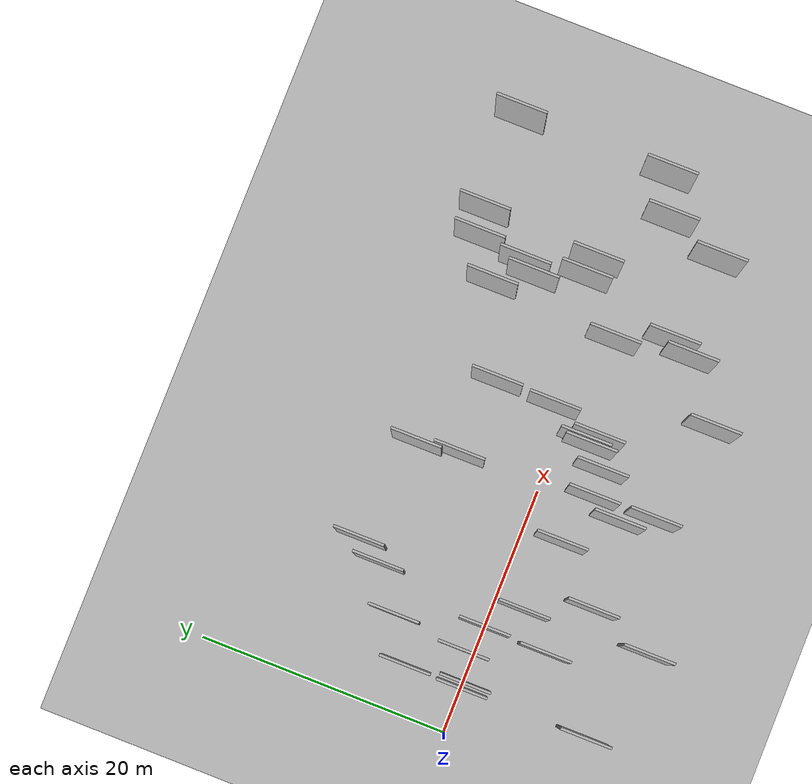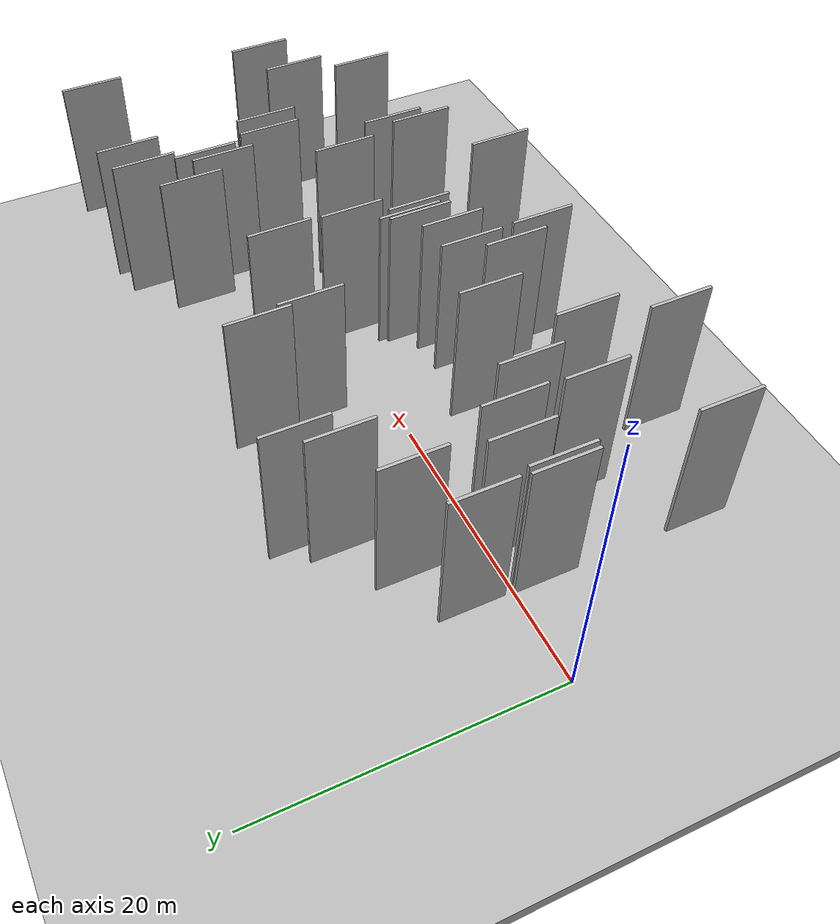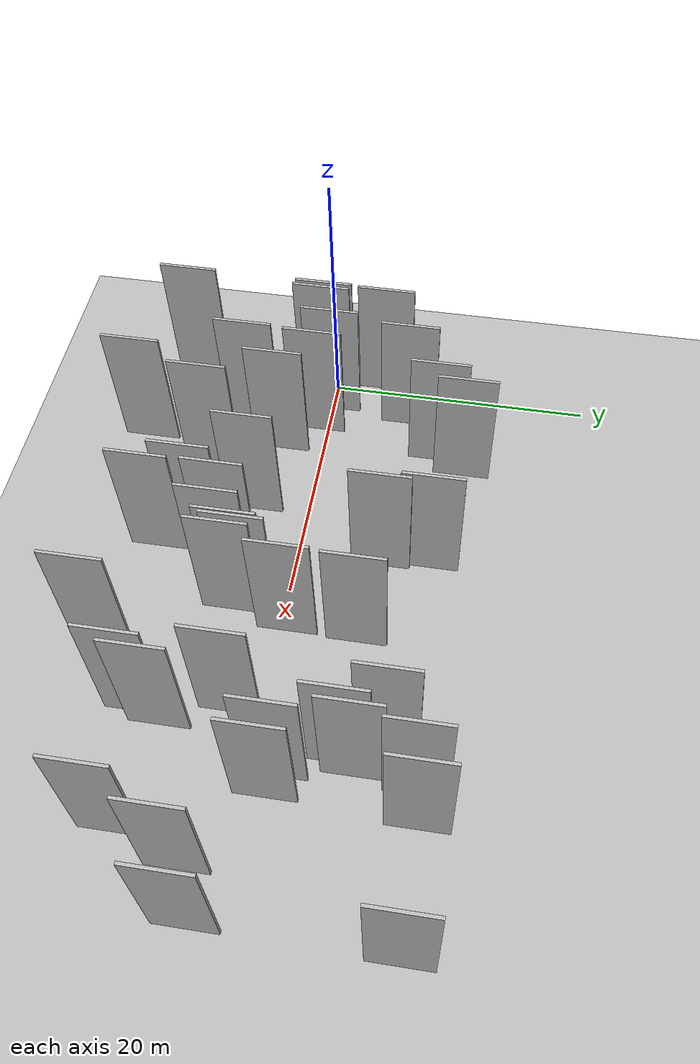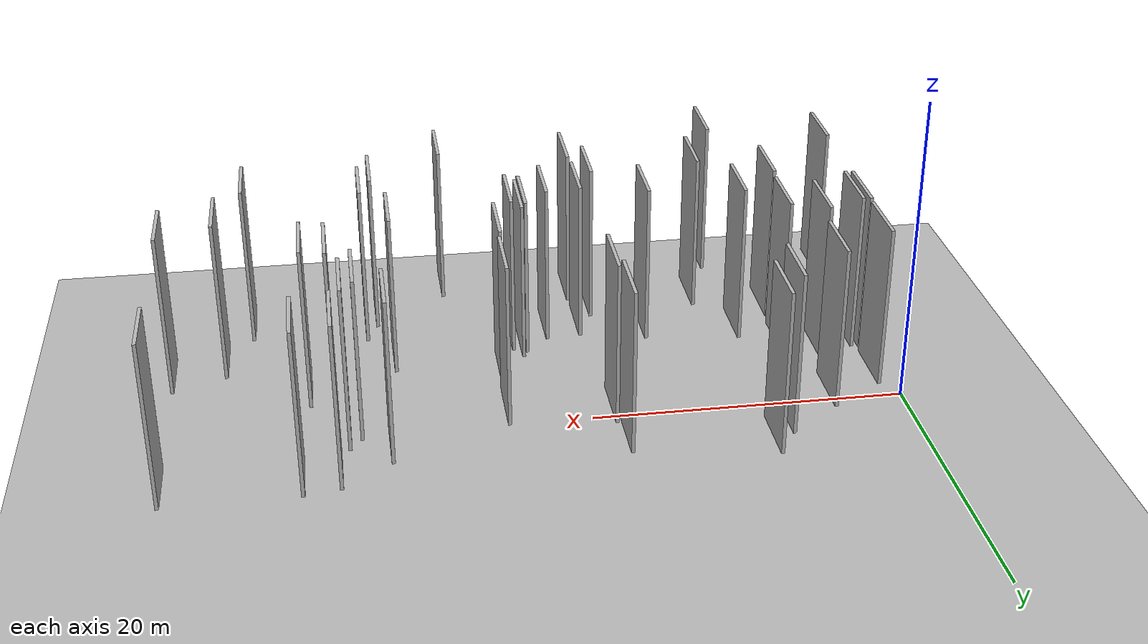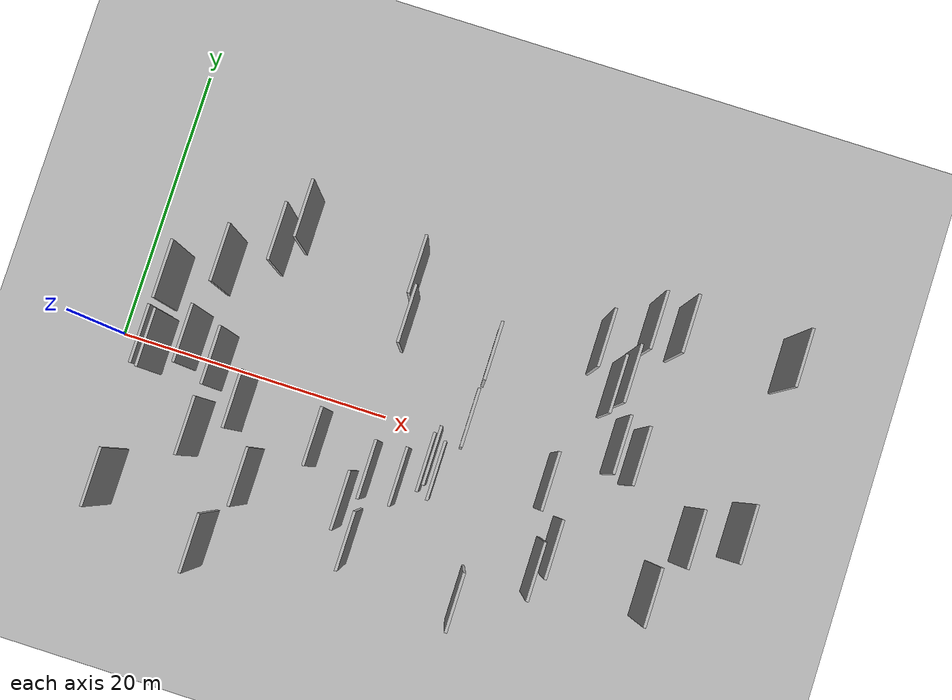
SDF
<?xml version="1.0" encoding="utf-8"?>

<sdf version="1.6">

   <world name="default">

      <gui fullscreen="0">

         <camera name="user_camera">

            <pose>-15 0 4.57585 0 0 0</pose>

            <view_controller>orbit</view_controller>

         </camera>

      </gui>

      <scene>

         <sky>

           <clouds>

             <speed>12</speed>

           </clouds>

         </sky>

         <ambient>0.4 0.4 0.4 1</ambient>

         <background>0.7 0.7 0.7 1</background>

         <shadows>1</shadows>

      </scene>

      <gravity>0 0 -9.8066</gravity>

      <magnetic_field>6e-06 2.3e-05 -4.2e-05</magnetic_field>

      <physics default="0" name="default_physics" type="ode">

         <ode>

            <solver>

               <type>quick</type>

               <iters>10</iters>

               <sor>1.0</sor>

               <use_dynamic_moi_rescaling>0</use_dynamic_moi_rescaling>

            </solver>

            <constraints>

               <cfm>0</cfm>

               <erp>0.2</erp>

               <contact_max_correcting_vel>100</contact_max_correcting_vel>

               <contact_surface_layer>0.001</contact_surface_layer>

            </constraints>

         </ode>

         <max_step_size>0.004</max_step_size>

         <real_time_factor>1</real_time_factor>

         <real_time_update_rate>250</real_time_update_rate>

      </physics>

      <light name="sun" type="directional">

         <cast_shadows>1</cast_shadows>

         <pose>0 0 10 0 0 0</pose>

         <diffuse>0.8 0.8 0.8 1</diffuse>

         <specular>0.2 0.2 0.2 1</specular>

         <attenuation>

            <range>1000</range>

            <constant>0.9</constant>

            <linear>0.01</linear>

            <quadratic>0.001</quadratic>

         </attenuation>

         <direction>-0.5 0.1 -0.9</direction>

      </light>

      <include>

         <name>ground_plane_1</name>

         <uri>model://HANNAS_ground_plane</uri>

         <pose>0 0 0  0 0 0</pose>

      </include>

      <include>

         <name>ground_plane_2</name>

         <uri>model://HANNAS_ground_plane</uri>

         <pose>100 0 0  0 0 0</pose>

      </include>

      <model name="HANNAS_wall_1">

         <static>1</static>

         <pose frame="">32.0899 -0.9507 5.0 0.000000 0.000000 1.570796</pose>

         <link name="link">

            <pose frame="">0 0 5.00 0 0 0</pose>

            <collision name="collision">

               <geometry>

                  <box>

                     <size>4.00 0.2 10.00</size>

                  </box>

               </geometry>

               <max_contacts>10</max_contacts>

               <surface>

                  <contact>

                     <ode/>

                  </contact>

                  <bounce/>

                  <friction>

                     <torsional>

                        <ode/>

                     </torsional>

                     <ode/>

                  </friction>

               </surface>

            </collision>

            <visual name="visual">

               <cast_shadows>0</cast_shadows>

               <geometry>

                  <box>

                     <size>4.00 0.2 10.00</size>

                  </box>

               </geometry>

               <material>

                  <script>

                     <uri>model://HANNAS_wall/materials/scripts</uri>

                     <uri>model://HANNAS_wall/materials/textures</uri>

                     <name>vrc/HANNAS_wall</name>

                  </script>

               </material>

            </visual>

            <self_collide>0</self_collide>

            <enable_wind>0</enable_wind>

            <kinematic>0</kinematic>

         </link>

      </model>

      <model name="HANNAS_wall_2">

         <static>1</static>

         <pose frame="">3.8781 4.5711 5.0 0.000000 0.000000 1.570796</pose>

         <link name="link">

            <pose frame="">0 0 5.00 0 0 0</pose>

            <collision name="collision">

               <geometry>

                  <box>

                     <size>4.00 0.2 10.00</size>

                  </box>

               </geometry>

               <max_contacts>10</max_contacts>

               <surface>

                  <contact>

                     <ode/>

                  </contact>

                  <bounce/>

                  <friction>

                     <torsional>

                        <ode/>

                     </torsional>

                     <ode/>

                  </friction>

               </surface>

            </collision>

            <visual name="visual">

               <cast_shadows>0</cast_shadows>

               <geometry>

                  <box>

                     <size>4.00 0.2 10.00</size>

                  </box>

               </geometry>

               <material>

                  <script>

                     <uri>model://HANNAS_wall/materials/scripts</uri>

                     <uri>model://HANNAS_wall/materials/textures</uri>

                     <name>vrc/HANNAS_wall</name>

                  </script>

               </material>

            </visual>

            <self_collide>0</self_collide>

            <enable_wind>0</enable_wind>

            <kinematic>0</kinematic>

         </link>

      </model>

      <model name="HANNAS_wall_3">

         <static>1</static>

         <pose frame="">12.7697 -6.7753 5.0 0.000000 0.000000 1.570796</pose>

         <link name="link">

            <pose frame="">0 0 5.00 0 0 0</pose>

            <collision name="collision">

               <geometry>

                  <box>

                     <size>4.00 0.2 10.00</size>

                  </box>

               </geometry>

               <max_contacts>10</max_contacts>

               <surface>

                  <contact>

                     <ode/>

                  </contact>

                  <bounce/>

                  <friction>

                     <torsional>

                        <ode/>

                     </torsional>

                     <ode/>

                  </friction>

               </surface>

            </collision>

            <visual name="visual">

               <cast_shadows>0</cast_shadows>

               <geometry>

                  <box>

                     <size>4.00 0.2 10.00</size>

                  </box>

               </geometry>

               <material>

                  <script>

                     <uri>model://HANNAS_wall/materials/scripts</uri>

                     <uri>model://HANNAS_wall/materials/textures</uri>

                     <name>vrc/HANNAS_wall</name>

                  </script>

               </material>

            </visual>

            <self_collide>0</self_collide>

            <enable_wind>0</enable_wind>

            <kinematic>0</kinematic>

         </link>

      </model>

      <model name="HANNAS_wall_4">

         <static>1</static>

         <pose frame="">6.4441 0.9730 5.0 0.000000 0.000000 1.570796</pose>

         <link name="link">

            <pose frame="">0 0 5.00 0 0 0</pose>

            <collision name="collision">

               <geometry>

                  <box>

                     <size>4.00 0.2 10.00</size>

                  </box>

               </geometry>

               <max_contacts>10</max_contacts>

               <surface>

                  <contact>

                     <ode/>

                  </contact>

                  <bounce/>

                  <friction>

                     <torsional>

                        <ode/>

                     </torsional>

                     <ode/>

                  </friction>

               </surface>

            </collision>

            <visual name="visual">

               <cast_shadows>0</cast_shadows>

               <geometry>

                  <box>

                     <size>4.00 0.2 10.00</size>

                  </box>

               </geometry>

               <material>

                  <script>

                     <uri>model://HANNAS_wall/materials/scripts</uri>

                     <uri>model://HANNAS_wall/materials/textures</uri>

                     <name>vrc/HANNAS_wall</name>

                  </script>

               </material>

            </visual>

            <self_collide>0</self_collide>

            <enable_wind>0</enable_wind>

            <kinematic>0</kinematic>

         </link>

      </model>

      <model name="HANNAS_wall_5">

         <static>1</static>

         <pose frame="">28.5477 -10.2144 5.0 0.000000 0.000000 1.570796</pose>

         <link name="link">

            <pose frame="">0 0 5.00 0 0 0</pose>

            <collision name="collision">

               <geometry>

                  <box>

                     <size>4.00 0.2 10.00</size>

                  </box>

               </geometry>

               <max_contacts>10</max_contacts>

               <surface>

                  <contact>

                     <ode/>

                  </contact>

                  <bounce/>

                  <friction>

                     <torsional>

                        <ode/>

                     </torsional>

                     <ode/>

                  </friction>

               </surface>

            </collision>

            <visual name="visual">

               <cast_shadows>0</cast_shadows>

               <geometry>

                  <box>

                     <size>4.00 0.2 10.00</size>

                  </box>

               </geometry>

               <material>

                  <script>

                     <uri>model://HANNAS_wall/materials/scripts</uri>

                     <uri>model://HANNAS_wall/materials/textures</uri>

                     <name>vrc/HANNAS_wall</name>

                  </script>

               </material>

            </visual>

            <self_collide>0</self_collide>

            <enable_wind>0</enable_wind>

            <kinematic>0</kinematic>

         </link>

      </model>

      <model name="HANNAS_wall_6">

         <static>1</static>

         <pose frame="">10.8348 -2.0974 5.0 0.000000 0.000000 1.570796</pose>

         <link name="link">

            <pose frame="">0 0 5.00 0 0 0</pose>

            <collision name="collision">

               <geometry>

                  <box>

                     <size>4.00 0.2 10.00</size>

                  </box>

               </geometry>

               <max_contacts>10</max_contacts>

               <surface>

                  <contact>

                     <ode/>

                  </contact>

                  <bounce/>

                  <friction>

                     <torsional>

                        <ode/>

                     </torsional>

                     <ode/>

                  </friction>

               </surface>

            </collision>

            <visual name="visual">

               <cast_shadows>0</cast_shadows>

               <geometry>

                  <box>

                     <size>4.00 0.2 10.00</size>

                  </box>

               </geometry>

               <material>

                  <script>

                     <uri>model://HANNAS_wall/materials/scripts</uri>

                     <uri>model://HANNAS_wall/materials/textures</uri>

                     <name>vrc/HANNAS_wall</name>

                  </script>

               </material>

            </visual>

            <self_collide>0</self_collide>

            <enable_wind>0</enable_wind>

            <kinematic>0</kinematic>

         </link>

      </model>

      <model name="HANNAS_wall_7">

         <static>1</static>

         <pose frame="">10.2143 9.1776 5.0 0.000000 0.000000 1.570796</pose>

         <link name="link">

            <pose frame="">0 0 5.00 0 0 0</pose>

            <collision name="collision">

               <geometry>

                  <box>

                     <size>4.00 0.2 10.00</size>

                  </box>

               </geometry>

               <max_contacts>10</max_contacts>

               <surface>

                  <contact>

                     <ode/>

                  </contact>

                  <bounce/>

                  <friction>

                     <torsional>

                        <ode/>

                     </torsional>

                     <ode/>

                  </friction>

               </surface>

            </collision>

            <visual name="visual">

               <cast_shadows>0</cast_shadows>

               <geometry>

                  <box>

                     <size>4.00 0.2 10.00</size>

                  </box>

               </geometry>

               <material>

                  <script>

                     <uri>model://HANNAS_wall/materials/scripts</uri>

                     <uri>model://HANNAS_wall/materials/textures</uri>

                     <name>vrc/HANNAS_wall</name>

                  </script>

               </material>

            </visual>

            <self_collide>0</self_collide>

            <enable_wind>0</enable_wind>

            <kinematic>0</kinematic>

         </link>

      </model>

      <model name="HANNAS_wall_8">

         <static>1</static>

         <pose frame="">42.1500 -1.6639 5.0 0.000000 0.000000 1.570796</pose>

         <link name="link">

            <pose frame="">0 0 5.00 0 0 0</pose>

            <collision name="collision">

               <geometry>

                  <box>

                     <size>4.00 0.2 10.00</size>

                  </box>

               </geometry>

               <max_contacts>10</max_contacts>

               <surface>

                  <contact>

                     <ode/>

                  </contact>

                  <bounce/>

                  <friction>

                     <torsional>

                        <ode/>

                     </torsional>

                     <ode/>

                  </friction>

               </surface>

            </collision>

            <visual name="visual">

               <cast_shadows>0</cast_shadows>

               <geometry>

                  <box>

                     <size>4.00 0.2 10.00</size>

                  </box>

               </geometry>

               <material>

                  <script>

                     <uri>model://HANNAS_wall/materials/scripts</uri>

                     <uri>model://HANNAS_wall/materials/textures</uri>

                     <name>vrc/HANNAS_wall</name>

                  </script>

               </material>

            </visual>

            <self_collide>0</self_collide>

            <enable_wind>0</enable_wind>

            <kinematic>0</kinematic>

         </link>

      </model>

      <model name="HANNAS_wall_9">

         <static>1</static>

         <pose frame="">8.6224 0.1664 5.0 0.000000 0.000000 1.570796</pose>

         <link name="link">

            <pose frame="">0 0 5.00 0 0 0</pose>

            <collision name="collision">

               <geometry>

                  <box>

                     <size>4.00 0.2 10.00</size>

                  </box>

               </geometry>

               <max_contacts>10</max_contacts>

               <surface>

                  <contact>

                     <ode/>

                  </contact>

                  <bounce/>

                  <friction>

                     <torsional>

                        <ode/>

                     </torsional>

                     <ode/>

                  </friction>

               </surface>

            </collision>

            <visual name="visual">

               <cast_shadows>0</cast_shadows>

               <geometry>

                  <box>

                     <size>4.00 0.2 10.00</size>

                  </box>

               </geometry>

               <material>

                  <script>

                     <uri>model://HANNAS_wall/materials/scripts</uri>

                     <uri>model://HANNAS_wall/materials/textures</uri>

                     <name>vrc/HANNAS_wall</name>

                  </script>

               </material>

            </visual>

            <self_collide>0</self_collide>

            <enable_wind>0</enable_wind>

            <kinematic>0</kinematic>

         </link>

      </model>

      <model name="HANNAS_wall_10">

         <static>1</static>

         <pose frame="">37.2203 2.3833 5.0 0.000000 0.000000 1.570796</pose>

         <link name="link">

            <pose frame="">0 0 5.00 0 0 0</pose>

            <collision name="collision">

               <geometry>

                  <box>

                     <size>4.00 0.2 10.00</size>

                  </box>

               </geometry>

               <max_contacts>10</max_contacts>

               <surface>

                  <contact>

                     <ode/>

                  </contact>

                  <bounce/>

                  <friction>

                     <torsional>

                        <ode/>

                     </torsional>

                     <ode/>

                  </friction>

               </surface>

            </collision>

            <visual name="visual">

               <cast_shadows>0</cast_shadows>

               <geometry>

                  <box>

                     <size>4.00 0.2 10.00</size>

                  </box>

               </geometry>

               <material>

                  <script>

                     <uri>model://HANNAS_wall/materials/scripts</uri>

                     <uri>model://HANNAS_wall/materials/textures</uri>

                     <name>vrc/HANNAS_wall</name>

                  </script>

               </material>

            </visual>

            <self_collide>0</self_collide>

            <enable_wind>0</enable_wind>

            <kinematic>0</kinematic>

         </link>

      </model>

      <model name="HANNAS_wall_11">

         <static>1</static>

         <pose frame="">33.6174 -5.0593 5.0 0.000000 0.000000 1.570796</pose>

         <link name="link">

            <pose frame="">0 0 5.00 0 0 0</pose>

            <collision name="collision">

               <geometry>

                  <box>

                     <size>4.00 0.2 10.00</size>

                  </box>

               </geometry>

               <max_contacts>10</max_contacts>

               <surface>

                  <contact>

                     <ode/>

                  </contact>

                  <bounce/>

                  <friction>

                     <torsional>

                        <ode/>

                     </torsional>

                     <ode/>

                  </friction>

               </surface>

            </collision>

            <visual name="visual">

               <cast_shadows>0</cast_shadows>

               <geometry>

                  <box>

                     <size>4.00 0.2 10.00</size>

                  </box>

               </geometry>

               <material>

                  <script>

                     <uri>model://HANNAS_wall/materials/scripts</uri>

                     <uri>model://HANNAS_wall/materials/textures</uri>

                     <name>vrc/HANNAS_wall</name>

                  </script>

               </material>

            </visual>

            <self_collide>0</self_collide>

            <enable_wind>0</enable_wind>

            <kinematic>0</kinematic>

         </link>

      </model>

      <model name="HANNAS_wall_12">

         <static>1</static>

         <pose frame="">4.2266 -0.0277 5.0 0.000000 0.000000 1.570796</pose>

         <link name="link">

            <pose frame="">0 0 5.00 0 0 0</pose>

            <collision name="collision">

               <geometry>

                  <box>

                     <size>4.00 0.2 10.00</size>

                  </box>

               </geometry>

               <max_contacts>10</max_contacts>

               <surface>

                  <contact>

                     <ode/>

                  </contact>

                  <bounce/>

                  <friction>

                     <torsional>

                        <ode/>

                     </torsional>

                     <ode/>

                  </friction>

               </surface>

            </collision>

            <visual name="visual">

               <cast_shadows>0</cast_shadows>

               <geometry>

                  <box>

                     <size>4.00 0.2 10.00</size>

                  </box>

               </geometry>

               <material>

                  <script>

                     <uri>model://HANNAS_wall/materials/scripts</uri>

                     <uri>model://HANNAS_wall/materials/textures</uri>

                     <name>vrc/HANNAS_wall</name>

                  </script>

               </material>

            </visual>

            <self_collide>0</self_collide>

            <enable_wind>0</enable_wind>

            <kinematic>0</kinematic>

         </link>

      </model>

      <model name="HANNAS_wall_13">

         <static>1</static>

         <pose frame="">11.3982 11.1318 5.0 0.000000 0.000000 1.570796</pose>

         <link name="link">

            <pose frame="">0 0 5.00 0 0 0</pose>

            <collision name="collision">

               <geometry>

                  <box>

                     <size>4.00 0.2 10.00</size>

                  </box>

               </geometry>

               <max_contacts>10</max_contacts>

               <surface>

                  <contact>

                     <ode/>

                  </contact>

                  <bounce/>

                  <friction>

                     <torsional>

                        <ode/>

                     </torsional>

                     <ode/>

                  </friction>

               </surface>

            </collision>

            <visual name="visual">

               <cast_shadows>0</cast_shadows>

               <geometry>

                  <box>

                     <size>4.00 0.2 10.00</size>

                  </box>

               </geometry>

               <material>

                  <script>

                     <uri>model://HANNAS_wall/materials/scripts</uri>

                     <uri>model://HANNAS_wall/materials/textures</uri>

                     <name>vrc/HANNAS_wall</name>

                  </script>

               </material>

            </visual>

            <self_collide>0</self_collide>

            <enable_wind>0</enable_wind>

            <kinematic>0</kinematic>

         </link>

      </model>

      <model name="HANNAS_wall_14">

         <static>1</static>

         <pose frame="">35.8132 2.7070 5.0 0.000000 0.000000 1.570796</pose>

         <link name="link">

            <pose frame="">0 0 5.00 0 0 0</pose>

            <collision name="collision">

               <geometry>

                  <box>

                     <size>4.00 0.2 10.00</size>

                  </box>

               </geometry>

               <max_contacts>10</max_contacts>

               <surface>

                  <contact>

                     <ode/>

                  </contact>

                  <bounce/>

                  <friction>

                     <torsional>

                        <ode/>

                     </torsional>

                     <ode/>

                  </friction>

               </surface>

            </collision>

            <visual name="visual">

               <cast_shadows>0</cast_shadows>

               <geometry>

                  <box>

                     <size>4.00 0.2 10.00</size>

                  </box>

               </geometry>

               <material>

                  <script>

                     <uri>model://HANNAS_wall/materials/scripts</uri>

                     <uri>model://HANNAS_wall/materials/textures</uri>

                     <name>vrc/HANNAS_wall</name>

                  </script>

               </material>

            </visual>

            <self_collide>0</self_collide>

            <enable_wind>0</enable_wind>

            <kinematic>0</kinematic>

         </link>

      </model>

      <model name="HANNAS_wall_15">

         <static>1</static>

         <pose frame="">19.6108 9.8736 5.0 0.000000 0.000000 1.570796</pose>

         <link name="link">

            <pose frame="">0 0 5.00 0 0 0</pose>

            <collision name="collision">

               <geometry>

                  <box>

                     <size>4.00 0.2 10.00</size>

                  </box>

               </geometry>

               <max_contacts>10</max_contacts>

               <surface>

                  <contact>

                     <ode/>

                  </contact>

                  <bounce/>

                  <friction>

                     <torsional>

                        <ode/>

                     </torsional>

                     <ode/>

                  </friction>

               </surface>

            </collision>

            <visual name="visual">

               <cast_shadows>0</cast_shadows>

               <geometry>

                  <box>

                     <size>4.00 0.2 10.00</size>

                  </box>

               </geometry>

               <material>

                  <script>

                     <uri>model://HANNAS_wall/materials/scripts</uri>

                     <uri>model://HANNAS_wall/materials/textures</uri>

                     <name>vrc/HANNAS_wall</name>

                  </script>

               </material>

            </visual>

            <self_collide>0</self_collide>

            <enable_wind>0</enable_wind>

            <kinematic>0</kinematic>

         </link>

      </model>

      <model name="HANNAS_wall_16">

         <static>1</static>

         <pose frame="">26.0416 5.9903 5.0 0.000000 0.000000 1.570796</pose>

         <link name="link">

            <pose frame="">0 0 5.00 0 0 0</pose>

            <collision name="collision">

               <geometry>

                  <box>

                     <size>4.00 0.2 10.00</size>

                  </box>

               </geometry>

               <max_contacts>10</max_contacts>

               <surface>

                  <contact>

                     <ode/>

                  </contact>

                  <bounce/>

                  <friction>

                     <torsional>

                        <ode/>

                     </torsional>

                     <ode/>

                  </friction>

               </surface>

            </collision>

            <visual name="visual">

               <cast_shadows>0</cast_shadows>

               <geometry>

                  <box>

                     <size>4.00 0.2 10.00</size>

                  </box>

               </geometry>

               <material>

                  <script>

                     <uri>model://HANNAS_wall/materials/scripts</uri>

                     <uri>model://HANNAS_wall/materials/textures</uri>

                     <name>vrc/HANNAS_wall</name>

                  </script>

               </material>

            </visual>

            <self_collide>0</self_collide>

            <enable_wind>0</enable_wind>

            <kinematic>0</kinematic>

         </link>

      </model>

      <model name="HANNAS_wall_17">

         <static>1</static>

         <pose frame="">20.5385 -3.8128 5.0 0.000000 0.000000 1.570796</pose>

         <link name="link">

            <pose frame="">0 0 5.00 0 0 0</pose>

            <collision name="collision">

               <geometry>

                  <box>

                     <size>4.00 0.2 10.00</size>

                  </box>

               </geometry>

               <max_contacts>10</max_contacts>

               <surface>

                  <contact>

                     <ode/>

                  </contact>

                  <bounce/>

                  <friction>

                     <torsional>

                        <ode/>

                     </torsional>

                     <ode/>

                  </friction>

               </surface>

            </collision>

            <visual name="visual">

               <cast_shadows>0</cast_shadows>

               <geometry>

                  <box>

                     <size>4.00 0.2 10.00</size>

                  </box>

               </geometry>

               <material>

                  <script>

                     <uri>model://HANNAS_wall/materials/scripts</uri>

                     <uri>model://HANNAS_wall/materials/textures</uri>

                     <name>vrc/HANNAS_wall</name>

                  </script>

               </material>

            </visual>

            <self_collide>0</self_collide>

            <enable_wind>0</enable_wind>

            <kinematic>0</kinematic>

         </link>

      </model>

      <model name="HANNAS_wall_18">

         <static>1</static>

         <pose frame="">35.1166 7.3211 5.0 0.000000 0.000000 1.570796</pose>

         <link name="link">

            <pose frame="">0 0 5.00 0 0 0</pose>

            <collision name="collision">

               <geometry>

                  <box>

                     <size>4.00 0.2 10.00</size>

                  </box>

               </geometry>

               <max_contacts>10</max_contacts>

               <surface>

                  <contact>

                     <ode/>

                  </contact>

                  <bounce/>

                  <friction>

                     <torsional>

                        <ode/>

                     </torsional>

                     <ode/>

                  </friction>

               </surface>

            </collision>

            <visual name="visual">

               <cast_shadows>0</cast_shadows>

               <geometry>

                  <box>

                     <size>4.00 0.2 10.00</size>

                  </box>

               </geometry>

               <material>

                  <script>

                     <uri>model://HANNAS_wall/materials/scripts</uri>

                     <uri>model://HANNAS_wall/materials/textures</uri>

                     <name>vrc/HANNAS_wall</name>

                  </script>

               </material>

            </visual>

            <self_collide>0</self_collide>

            <enable_wind>0</enable_wind>

            <kinematic>0</kinematic>

         </link>

      </model>

      <model name="HANNAS_wall_19">

         <static>1</static>

         <pose frame="">19.9417 6.6022 5.0 0.000000 0.000000 1.570796</pose>

         <link name="link">

            <pose frame="">0 0 5.00 0 0 0</pose>

            <collision name="collision">

               <geometry>

                  <box>

                     <size>4.00 0.2 10.00</size>

                  </box>

               </geometry>

               <max_contacts>10</max_contacts>

               <surface>

                  <contact>

                     <ode/>

                  </contact>

                  <bounce/>

                  <friction>

                     <torsional>

                        <ode/>

                     </torsional>

                     <ode/>

                  </friction>

               </surface>

            </collision>

            <visual name="visual">

               <cast_shadows>0</cast_shadows>

               <geometry>

                  <box>

                     <size>4.00 0.2 10.00</size>

                  </box>

               </geometry>

               <material>

                  <script>

                     <uri>model://HANNAS_wall/materials/scripts</uri>

                     <uri>model://HANNAS_wall/materials/textures</uri>

                     <name>vrc/HANNAS_wall</name>

                  </script>

               </material>

            </visual>

            <self_collide>0</self_collide>

            <enable_wind>0</enable_wind>

            <kinematic>0</kinematic>

         </link>

      </model>

      <model name="HANNAS_wall_20">

         <static>1</static>

         <pose frame="">24.8333 -2.5378 5.0 0.000000 0.000000 1.570796</pose>

         <link name="link">

            <pose frame="">0 0 5.00 0 0 0</pose>

            <collision name="collision">

               <geometry>

                  <box>

                     <size>4.00 0.2 10.00</size>

                  </box>

               </geometry>

               <max_contacts>10</max_contacts>

               <surface>

                  <contact>

                     <ode/>

                  </contact>

                  <bounce/>

                  <friction>

                     <torsional>

                        <ode/>

                     </torsional>

                     <ode/>

                  </friction>

               </surface>

            </collision>

            <visual name="visual">

               <cast_shadows>0</cast_shadows>

               <geometry>

                  <box>

                     <size>4.00 0.2 10.00</size>

                  </box>

               </geometry>

               <material>

                  <script>

                     <uri>model://HANNAS_wall/materials/scripts</uri>

                     <uri>model://HANNAS_wall/materials/textures</uri>

                     <name>vrc/HANNAS_wall</name>

                  </script>

               </material>

            </visual>

            <self_collide>0</self_collide>

            <enable_wind>0</enable_wind>

            <kinematic>0</kinematic>

         </link>

      </model>

      <model name="HANNAS_wall_21">

         <static>1</static>

         <pose frame="">34.4068 6.3900 5.0 0.000000 0.000000 1.570796</pose>

         <link name="link">

            <pose frame="">0 0 5.00 0 0 0</pose>

            <collision name="collision">

               <geometry>

                  <box>

                     <size>4.00 0.2 10.00</size>

                  </box>

               </geometry>

               <max_contacts>10</max_contacts>

               <surface>

                  <contact>

                     <ode/>

                  </contact>

                  <bounce/>

                  <friction>

                     <torsional>

                        <ode/>

                     </torsional>

                     <ode/>

                  </friction>

               </surface>

            </collision>

            <visual name="visual">

               <cast_shadows>0</cast_shadows>

               <geometry>

                  <box>

                     <size>4.00 0.2 10.00</size>

                  </box>

               </geometry>

               <material>

                  <script>

                     <uri>model://HANNAS_wall/materials/scripts</uri>

                     <uri>model://HANNAS_wall/materials/textures</uri>

                     <name>vrc/HANNAS_wall</name>

                  </script>

               </material>

            </visual>

            <self_collide>0</self_collide>

            <enable_wind>0</enable_wind>

            <kinematic>0</kinematic>

         </link>

      </model>

      <model name="HANNAS_wall_22">

         <static>1</static>

         <pose frame="">24.0299 -2.2129 5.0 0.000000 0.000000 1.570796</pose>

         <link name="link">

            <pose frame="">0 0 5.00 0 0 0</pose>

            <collision name="collision">

               <geometry>

                  <box>

                     <size>4.00 0.2 10.00</size>

                  </box>

               </geometry>

               <max_contacts>10</max_contacts>

               <surface>

                  <contact>

                     <ode/>

                  </contact>

                  <bounce/>

                  <friction>

                     <torsional>

                        <ode/>

                     </torsional>

                     <ode/>

                  </friction>

               </surface>

            </collision>

            <visual name="visual">

               <cast_shadows>0</cast_shadows>

               <geometry>

                  <box>

                     <size>4.00 0.2 10.00</size>

                  </box>

               </geometry>

               <material>

                  <script>

                     <uri>model://HANNAS_wall/materials/scripts</uri>

                     <uri>model://HANNAS_wall/materials/textures</uri>

                     <name>vrc/HANNAS_wall</name>

                  </script>

               </material>

            </visual>

            <self_collide>0</self_collide>

            <enable_wind>0</enable_wind>

            <kinematic>0</kinematic>

         </link>

      </model>

      <model name="HANNAS_wall_23">

         <static>1</static>

         <pose frame="">40.5908 -6.0570 5.0 0.000000 0.000000 1.570796</pose>

         <link name="link">

            <pose frame="">0 0 5.00 0 0 0</pose>

            <collision name="collision">

               <geometry>

                  <box>

                     <size>4.00 0.2 10.00</size>

                  </box>

               </geometry>

               <max_contacts>10</max_contacts>

               <surface>

                  <contact>

                     <ode/>

                  </contact>

                  <bounce/>

                  <friction>

                     <torsional>

                        <ode/>

                     </torsional>

                     <ode/>

                  </friction>

               </surface>

            </collision>

            <visual name="visual">

               <cast_shadows>0</cast_shadows>

               <geometry>

                  <box>

                     <size>4.00 0.2 10.00</size>

                  </box>

               </geometry>

               <material>

                  <script>

                     <uri>model://HANNAS_wall/materials/scripts</uri>

                     <uri>model://HANNAS_wall/materials/textures</uri>

                     <name>vrc/HANNAS_wall</name>

                  </script>

               </material>

            </visual>

            <self_collide>0</self_collide>

            <enable_wind>0</enable_wind>

            <kinematic>0</kinematic>

         </link>

      </model>

      <model name="HANNAS_wall_24">

         <static>1</static>

         <pose frame="">3.7297 -9.6613 5.0 0.000000 0.000000 1.570796</pose>

         <link name="link">

            <pose frame="">0 0 5.00 0 0 0</pose>

            <collision name="collision">

               <geometry>

                  <box>

                     <size>4.00 0.2 10.00</size>

                  </box>

               </geometry>

               <max_contacts>10</max_contacts>

               <surface>

                  <contact>

                     <ode/>

                  </contact>

                  <bounce/>

                  <friction>

                     <torsional>

                        <ode/>

                     </torsional>

                     <ode/>

                  </friction>

               </surface>

            </collision>

            <visual name="visual">

               <cast_shadows>0</cast_shadows>

               <geometry>

                  <box>

                     <size>4.00 0.2 10.00</size>

                  </box>

               </geometry>

               <material>

                  <script>

                     <uri>model://HANNAS_wall/materials/scripts</uri>

                     <uri>model://HANNAS_wall/materials/textures</uri>

                     <name>vrc/HANNAS_wall</name>

                  </script>

               </material>

            </visual>

            <self_collide>0</self_collide>

            <enable_wind>0</enable_wind>

            <kinematic>0</kinematic>

         </link>

      </model>

      <model name="HANNAS_wall_25">

         <static>1</static>

         <pose frame="">37.7614 11.5580 5.0 0.000000 0.000000 1.570796</pose>

         <link name="link">

            <pose frame="">0 0 5.00 0 0 0</pose>

            <collision name="collision">

               <geometry>

                  <box>

                     <size>4.00 0.2 10.00</size>

                  </box>

               </geometry>

               <max_contacts>10</max_contacts>

               <surface>

                  <contact>

                     <ode/>

                  </contact>

                  <bounce/>

                  <friction>

                     <torsional>

                        <ode/>

                     </torsional>

                     <ode/>

                  </friction>

               </surface>

            </collision>

            <visual name="visual">

               <cast_shadows>0</cast_shadows>

               <geometry>

                  <box>

                     <size>4.00 0.2 10.00</size>

                  </box>

               </geometry>

               <material>

                  <script>

                     <uri>model://HANNAS_wall/materials/scripts</uri>

                     <uri>model://HANNAS_wall/materials/textures</uri>

                     <name>vrc/HANNAS_wall</name>

                  </script>

               </material>

            </visual>

            <self_collide>0</self_collide>

            <enable_wind>0</enable_wind>

            <kinematic>0</kinematic>

         </link>

      </model>

      <model name="HANNAS_wall_26">

         <static>1</static>

         <pose frame="">24.3046 -1.6920 5.0 0.000000 0.000000 1.570796</pose>

         <link name="link">

            <pose frame="">0 0 5.00 0 0 0</pose>

            <collision name="collision">

               <geometry>

                  <box>

                     <size>4.00 0.2 10.00</size>

                  </box>

               </geometry>

               <max_contacts>10</max_contacts>

               <surface>

                  <contact>

                     <ode/>

                  </contact>

                  <bounce/>

                  <friction>

                     <torsional>

                        <ode/>

                     </torsional>

                     <ode/>

                  </friction>

               </surface>

            </collision>

            <visual name="visual">

               <cast_shadows>0</cast_shadows>

               <geometry>

                  <box>

                     <size>4.00 0.2 10.00</size>

                  </box>

               </geometry>

               <material>

                  <script>

                     <uri>model://HANNAS_wall/materials/scripts</uri>

                     <uri>model://HANNAS_wall/materials/textures</uri>

                     <name>vrc/HANNAS_wall</name>

                  </script>

               </material>

            </visual>

            <self_collide>0</self_collide>

            <enable_wind>0</enable_wind>

            <kinematic>0</kinematic>

         </link>

      </model>

      <model name="HANNAS_wall_27">

         <static>1</static>

         <pose frame="">32.9323 -6.7560 5.0 0.000000 0.000000 1.570796</pose>

         <link name="link">

            <pose frame="">0 0 5.00 0 0 0</pose>

            <collision name="collision">

               <geometry>

                  <box>

                     <size>4.00 0.2 10.00</size>

                  </box>

               </geometry>

               <max_contacts>10</max_contacts>

               <surface>

                  <contact>

                     <ode/>

                  </contact>

                  <bounce/>

                  <friction>

                     <torsional>

                        <ode/>

                     </torsional>

                     <ode/>

                  </friction>

               </surface>

            </collision>

            <visual name="visual">

               <cast_shadows>0</cast_shadows>

               <geometry>

                  <box>

                     <size>4.00 0.2 10.00</size>

                  </box>

               </geometry>

               <material>

                  <script>

                     <uri>model://HANNAS_wall/materials/scripts</uri>

                     <uri>model://HANNAS_wall/materials/textures</uri>

                     <name>vrc/HANNAS_wall</name>

                  </script>

               </material>

            </visual>

            <self_collide>0</self_collide>

            <enable_wind>0</enable_wind>

            <kinematic>0</kinematic>

         </link>

      </model>

      <model name="HANNAS_wall_28">

         <static>1</static>

         <pose frame="">19.5198 -6.2167 5.0 0.000000 0.000000 1.570796</pose>

         <link name="link">

            <pose frame="">0 0 5.00 0 0 0</pose>

            <collision name="collision">

               <geometry>

                  <box>

                     <size>4.00 0.2 10.00</size>

                  </box>

               </geometry>

               <max_contacts>10</max_contacts>

               <surface>

                  <contact>

                     <ode/>

                  </contact>

                  <bounce/>

                  <friction>

                     <torsional>

                        <ode/>

                     </torsional>

                     <ode/>

                  </friction>

               </surface>

            </collision>

            <visual name="visual">

               <cast_shadows>0</cast_shadows>

               <geometry>

                  <box>

                     <size>4.00 0.2 10.00</size>

                  </box>

               </geometry>

               <material>

                  <script>

                     <uri>model://HANNAS_wall/materials/scripts</uri>

                     <uri>model://HANNAS_wall/materials/textures</uri>

                     <name>vrc/HANNAS_wall</name>

                  </script>

               </material>

            </visual>

            <self_collide>0</self_collide>

            <enable_wind>0</enable_wind>

            <kinematic>0</kinematic>

         </link>

      </model>

      <model name="HANNAS_wall_29">

         <static>1</static>

         <pose frame="">35.6991 11.1613 5.0 0.000000 0.000000 1.570796</pose>

         <link name="link">

            <pose frame="">0 0 5.00 0 0 0</pose>

            <collision name="collision">

               <geometry>

                  <box>

                     <size>4.00 0.2 10.00</size>

                  </box>

               </geometry>

               <max_contacts>10</max_contacts>

               <surface>

                  <contact>

                     <ode/>

                  </contact>

                  <bounce/>

                  <friction>

                     <torsional>

                        <ode/>

                     </torsional>

                     <ode/>

                  </friction>

               </surface>

            </collision>

            <visual name="visual">

               <cast_shadows>0</cast_shadows>

               <geometry>

                  <box>

                     <size>4.00 0.2 10.00</size>

                  </box>

               </geometry>

               <material>

                  <script>

                     <uri>model://HANNAS_wall/materials/scripts</uri>

                     <uri>model://HANNAS_wall/materials/textures</uri>

                     <name>vrc/HANNAS_wall</name>

                  </script>

               </material>

            </visual>

            <self_collide>0</self_collide>

            <enable_wind>0</enable_wind>

            <kinematic>0</kinematic>

         </link>

      </model>

      <model name="HANNAS_wall_30">

         <static>1</static>

         <pose frame="">7.0818 6.7154 5.0 0.000000 0.000000 1.570796</pose>

         <link name="link">

            <pose frame="">0 0 5.00 0 0 0</pose>

            <collision name="collision">

               <geometry>

                  <box>

                     <size>4.00 0.2 10.00</size>

                  </box>

               </geometry>

               <max_contacts>10</max_contacts>

               <surface>

                  <contact>

                     <ode/>

                  </contact>

                  <bounce/>

                  <friction>

                     <torsional>

                        <ode/>

                     </torsional>

                     <ode/>

                  </friction>

               </surface>

            </collision>

            <visual name="visual">

               <cast_shadows>0</cast_shadows>

               <geometry>

                  <box>

                     <size>4.00 0.2 10.00</size>

                  </box>

               </geometry>

               <material>

                  <script>

                     <uri>model://HANNAS_wall/materials/scripts</uri>

                     <uri>model://HANNAS_wall/materials/textures</uri>

                     <name>vrc/HANNAS_wall</name>

                  </script>

               </material>

            </visual>

            <self_collide>0</self_collide>

            <enable_wind>0</enable_wind>

            <kinematic>0</kinematic>

         </link>

      </model>

      <model name="HANNAS_wall_31">

         <static>1</static>

         <pose frame="">11.1114 -11.7723 5.0 0.000000 0.000000 1.570796</pose>

         <link name="link">

            <pose frame="">0 0 5.00 0 0 0</pose>

            <collision name="collision">

               <geometry>

                  <box>

                     <size>4.00 0.2 10.00</size>

                  </box>

               </geometry>

               <max_contacts>10</max_contacts>

               <surface>

                  <contact>

                     <ode/>

                  </contact>

                  <bounce/>

                  <friction>

                     <torsional>

                        <ode/>

                     </torsional>

                     <ode/>

                  </friction>

               </surface>

            </collision>

            <visual name="visual">

               <cast_shadows>0</cast_shadows>

               <geometry>

                  <box>

                     <size>4.00 0.2 10.00</size>

                  </box>

               </geometry>

               <material>

                  <script>

                     <uri>model://HANNAS_wall/materials/scripts</uri>

                     <uri>model://HANNAS_wall/materials/textures</uri>

                     <name>vrc/HANNAS_wall</name>

                  </script>

               </material>

            </visual>

            <self_collide>0</self_collide>

            <enable_wind>0</enable_wind>

            <kinematic>0</kinematic>

         </link>

      </model>

      <model name="HANNAS_wall_32">

         <static>1</static>

         <pose frame="">20.6333 -8.6082 5.0 0.000000 0.000000 1.570796</pose>

         <link name="link">

            <pose frame="">0 0 5.00 0 0 0</pose>

            <collision name="collision">

               <geometry>

                  <box>

                     <size>4.00 0.2 10.00</size>

                  </box>

               </geometry>

               <max_contacts>10</max_contacts>

               <surface>

                  <contact>

                     <ode/>

                  </contact>

                  <bounce/>

                  <friction>

                     <torsional>

                        <ode/>

                     </torsional>

                     <ode/>

                  </friction>

               </surface>

            </collision>

            <visual name="visual">

               <cast_shadows>0</cast_shadows>

               <geometry>

                  <box>

                     <size>4.00 0.2 10.00</size>

                  </box>

               </geometry>

               <material>

                  <script>

                     <uri>model://HANNAS_wall/materials/scripts</uri>

                     <uri>model://HANNAS_wall/materials/textures</uri>

                     <name>vrc/HANNAS_wall</name>

                  </script>

               </material>

            </visual>

            <self_collide>0</self_collide>

            <enable_wind>0</enable_wind>

            <kinematic>0</kinematic>

         </link>

      </model>

      <model name="HANNAS_wall_33">

         <static>1</static>

         <pose frame="">25.9087 1.3862 5.0 0.000000 0.000000 1.570796</pose>

         <link name="link">

            <pose frame="">0 0 5.00 0 0 0</pose>

            <collision name="collision">

               <geometry>

                  <box>

                     <size>4.00 0.2 10.00</size>

                  </box>

               </geometry>

               <max_contacts>10</max_contacts>

               <surface>

                  <contact>

                     <ode/>

                  </contact>

                  <bounce/>

                  <friction>

                     <torsional>

                        <ode/>

                     </torsional>

                     <ode/>

                  </friction>

               </surface>

            </collision>

            <visual name="visual">

               <cast_shadows>0</cast_shadows>

               <geometry>

                  <box>

                     <size>4.00 0.2 10.00</size>

                  </box>

               </geometry>

               <material>

                  <script>

                     <uri>model://HANNAS_wall/materials/scripts</uri>

                     <uri>model://HANNAS_wall/materials/textures</uri>

                     <name>vrc/HANNAS_wall</name>

                  </script>

               </material>

            </visual>

            <self_collide>0</self_collide>

            <enable_wind>0</enable_wind>

            <kinematic>0</kinematic>

         </link>

      </model>

      <model name="HANNAS_wall_34">

         <static>1</static>

         <pose frame="">32.8179 9.0328 5.0 0.000000 0.000000 1.570796</pose>

         <link name="link">

            <pose frame="">0 0 5.00 0 0 0</pose>

            <collision name="collision">

               <geometry>

                  <box>

                     <size>4.00 0.2 10.00</size>

                  </box>

               </geometry>

               <max_contacts>10</max_contacts>

               <surface>

                  <contact>

                     <ode/>

                  </contact>

                  <bounce/>

                  <friction>

                     <torsional>

                        <ode/>

                     </torsional>

                     <ode/>

                  </friction>

               </surface>

            </collision>

            <visual name="visual">

               <cast_shadows>0</cast_shadows>

               <geometry>

                  <box>

                     <size>4.00 0.2 10.00</size>

                  </box>

               </geometry>

               <material>

                  <script>

                     <uri>model://HANNAS_wall/materials/scripts</uri>

                     <uri>model://HANNAS_wall/materials/textures</uri>

                     <name>vrc/HANNAS_wall</name>

                  </script>

               </material>

            </visual>

            <self_collide>0</self_collide>

            <enable_wind>0</enable_wind>

            <kinematic>0</kinematic>

         </link>

      </model>

      <model name="HANNAS_wall_35">

         <static>1</static>

         <pose frame="">45.4165 11.6583 5.0 0.000000 0.000000 1.570796</pose>

         <link name="link">

            <pose frame="">0 0 5.00 0 0 0</pose>

            <collision name="collision">

               <geometry>

                  <box>

                     <size>4.00 0.2 10.00</size>

                  </box>

               </geometry>

               <max_contacts>10</max_contacts>

               <surface>

                  <contact>

                     <ode/>

                  </contact>

                  <bounce/>

                  <friction>

                     <torsional>

                        <ode/>

                     </torsional>

                     <ode/>

                  </friction>

               </surface>

            </collision>

            <visual name="visual">

               <cast_shadows>0</cast_shadows>

               <geometry>

                  <box>

                     <size>4.00 0.2 10.00</size>

                  </box>

               </geometry>

               <material>

                  <script>

                     <uri>model://HANNAS_wall/materials/scripts</uri>

                     <uri>model://HANNAS_wall/materials/textures</uri>

                     <name>vrc/HANNAS_wall</name>

                  </script>

               </material>

            </visual>

            <self_collide>0</self_collide>

            <enable_wind>0</enable_wind>

            <kinematic>0</kinematic>

         </link>

      </model>

      <model name="HANNAS_wall_36">

         <static>1</static>

         <pose frame="">22.6115 -3.6477 5.0 0.000000 0.000000 1.570796</pose>

         <link name="link">

            <pose frame="">0 0 5.00 0 0 0</pose>

            <collision name="collision">

               <geometry>

                  <box>

                     <size>4.00 0.2 10.00</size>

                  </box>

               </geometry>

               <max_contacts>10</max_contacts>

               <surface>

                  <contact>

                     <ode/>

                  </contact>

                  <bounce/>

                  <friction>

                     <torsional>

                        <ode/>

                     </torsional>

                     <ode/>

                  </friction>

               </surface>

            </collision>

            <visual name="visual">

               <cast_shadows>0</cast_shadows>

               <geometry>

                  <box>

                     <size>4.00 0.2 10.00</size>

                  </box>

               </geometry>

               <material>

                  <script>

                     <uri>model://HANNAS_wall/materials/scripts</uri>

                     <uri>model://HANNAS_wall/materials/textures</uri>

                     <name>vrc/HANNAS_wall</name>

                  </script>

               </material>

            </visual>

            <self_collide>0</self_collide>

            <enable_wind>0</enable_wind>

            <kinematic>0</kinematic>

         </link>

      </model>

      <model name="HANNAS_wall_37">

         <static>1</static>

         <pose frame="">45.2653 -0.3391 5.0 0.000000 0.000000 1.570796</pose>

         <link name="link">

            <pose frame="">0 0 5.00 0 0 0</pose>

            <collision name="collision">

               <geometry>

                  <box>

                     <size>4.00 0.2 10.00</size>

                  </box>

               </geometry>

               <max_contacts>10</max_contacts>

               <surface>

                  <contact>

                     <ode/>

                  </contact>

                  <bounce/>

                  <friction>

                     <torsional>

                        <ode/>

                     </torsional>

                     <ode/>

                  </friction>

               </surface>

            </collision>

            <visual name="visual">

               <cast_shadows>0</cast_shadows>

               <geometry>

                  <box>

                     <size>4.00 0.2 10.00</size>

                  </box>

               </geometry>

               <material>

                  <script>

                     <uri>model://HANNAS_wall/materials/scripts</uri>

                     <uri>model://HANNAS_wall/materials/textures</uri>

                     <name>vrc/HANNAS_wall</name>

                  </script>

               </material>

            </visual>

            <self_collide>0</self_collide>

            <enable_wind>0</enable_wind>

            <kinematic>0</kinematic>

         </link>

      </model>

      <model name="HANNAS_wall_38">

         <static>1</static>

         <pose frame="">16.5491 -2.8468 5.0 0.000000 0.000000 1.570796</pose>

         <link name="link">

            <pose frame="">0 0 5.00 0 0 0</pose>

            <collision name="collision">

               <geometry>

                  <box>

                     <size>4.00 0.2 10.00</size>

                  </box>

               </geometry>

               <max_contacts>10</max_contacts>

               <surface>

                  <contact>

                     <ode/>

                  </contact>

                  <bounce/>

                  <friction>

                     <torsional>

                        <ode/>

                     </torsional>

                     <ode/>

                  </friction>

               </surface>

            </collision>

            <visual name="visual">

               <cast_shadows>0</cast_shadows>

               <geometry>

                  <box>

                     <size>4.00 0.2 10.00</size>

                  </box>

               </geometry>

               <material>

                  <script>

                     <uri>model://HANNAS_wall/materials/scripts</uri>

                     <uri>model://HANNAS_wall/materials/textures</uri>

                     <name>vrc/HANNAS_wall</name>

                  </script>

               </material>

            </visual>

            <self_collide>0</self_collide>

            <enable_wind>0</enable_wind>

            <kinematic>0</kinematic>

         </link>

      </model>

      <model name="HANNAS_wall_39">

         <static>1</static>

         <pose frame="">3.7745 0.0872 5.0 0.000000 0.000000 1.570796</pose>

         <link name="link">

            <pose frame="">0 0 5.00 0 0 0</pose>

            <collision name="collision">

               <geometry>

                  <box>

                     <size>4.00 0.2 10.00</size>

                  </box>

               </geometry>

               <max_contacts>10</max_contacts>

               <surface>

                  <contact>

                     <ode/>

                  </contact>

                  <bounce/>

                  <friction>

                     <torsional>

                        <ode/>

                     </torsional>

                     <ode/>

                  </friction>

               </surface>

            </collision>

            <visual name="visual">

               <cast_shadows>0</cast_shadows>

               <geometry>

                  <box>

                     <size>4.00 0.2 10.00</size>

                  </box>

               </geometry>

               <material>

                  <script>

                     <uri>model://HANNAS_wall/materials/scripts</uri>

                     <uri>model://HANNAS_wall/materials/textures</uri>

                     <name>vrc/HANNAS_wall</name>

                  </script>

               </material>

            </visual>

            <self_collide>0</self_collide>

            <enable_wind>0</enable_wind>

            <kinematic>0</kinematic>

         </link>

      </model>

      <model name="HANNAS_wall_40">

         <static>1</static>

         <pose frame="">8.4607 -4.6758 5.0 0.000000 0.000000 1.570796</pose>

         <link name="link">

            <pose frame="">0 0 5.00 0 0 0</pose>

            <collision name="collision">

               <geometry>

                  <box>

                     <size>4.00 0.2 10.00</size>

                  </box>

               </geometry>

               <max_contacts>10</max_contacts>

               <surface>

                  <contact>

                     <ode/>

                  </contact>

                  <bounce/>

                  <friction>

                     <torsional>

                        <ode/>

                     </torsional>

                     <ode/>

                  </friction>

               </surface>

            </collision>

            <visual name="visual">

               <cast_shadows>0</cast_shadows>

               <geometry>

                  <box>

                     <size>4.00 0.2 10.00</size>

                  </box>

               </geometry>

               <material>

                  <script>

                     <uri>model://HANNAS_wall/materials/scripts</uri>

                     <uri>model://HANNAS_wall/materials/textures</uri>

                     <name>vrc/HANNAS_wall</name>

                  </script>

               </material>

            </visual>

            <self_collide>0</self_collide>

            <enable_wind>0</enable_wind>

            <kinematic>0</kinematic>

         </link>

      </model>

   </world>

</sdf>
